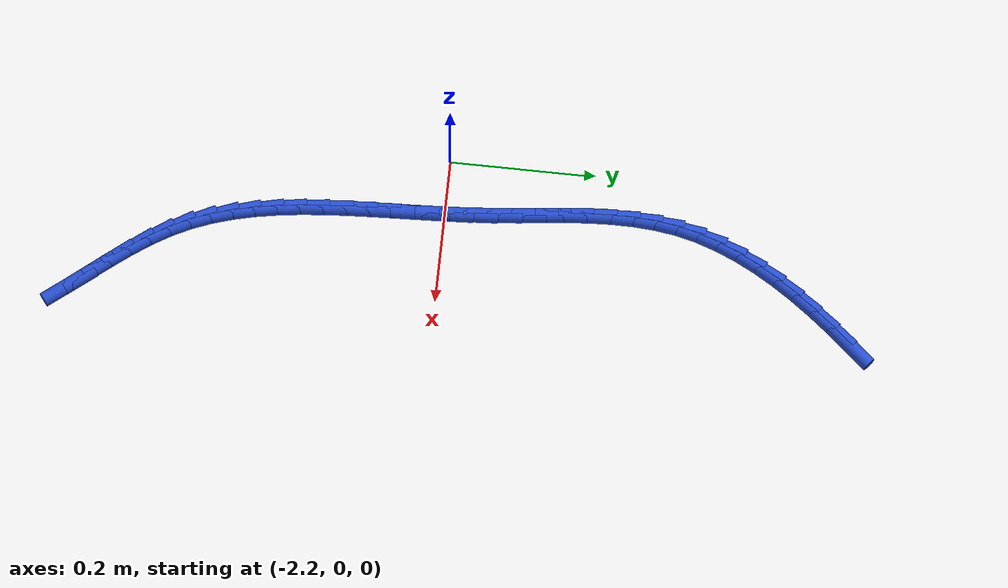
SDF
<sdf version="1.6">
 <world name="default">
  <model name="ground_plane">
   <static>1</static>
   <link name="link">
    <collision name="collision">
     <geometry><plane><normal>0 0 1</normal><size>100 100</size></plane></geometry>
     <surface><friction><ode><mu>100</mu><mu2>50</mu2></ode></friction></surface>
    </collision>
    <visual name="visual">
     <cast_shadows>0</cast_shadows>
     <geometry><plane><normal>0 0 1</normal><size>100 100</size></plane></geometry>
     <material>
      <script><uri>file://media/materials/scripts/gazebo.material</uri><name>Gazebo/WhiteGlow</name></script>
     </material>
    </visual>
   </link>
  </model>
  <model name="line">
   <link name="link_93">
    <pose>-1.9964070038918784 0.558913786594028 0.01 0 1.57 0.860356635139389</pose>
    <collision name="collision">
     <geometry><cylinder><radius>0.01</radius><length>0.08</length></cylinder></geometry>
    </collision>
    <visual name="visual">
     <material>
      <script><name>Gazebo/Blue</name><uri>file://media/materials/scripts/gazebo.material</uri></script>
     </material>
     <geometry><cylinder><radius>0.01</radius><length>0.08</length></cylinder></geometry>
    </visual>
   </link>
   <link name="link_94">
    <pose>-2.0177980073815713 0.5340490121318456 0.01 0 1.57 0.8931050110096916</pose>
    <collision name="collision">
     <geometry><cylinder><radius>0.01</radius><length>0.08</length></cylinder></geometry>
    </collision>
    <visual name="visual">
     <material>
      <script><name>Gazebo/Blue</name><uri>file://media/materials/scripts/gazebo.material</uri></script>
     </material>
     <geometry><cylinder><radius>0.01</radius><length>0.08</length></cylinder></geometry>
    </visual>
   </link>
   <link name="link_95">
    <pose>-2.0382259802814744 0.5086679212290653 0.01 0 1.57 0.9322414474355037</pose>
    <collision name="collision">
     <geometry><cylinder><radius>0.01</radius><length>0.08</length></cylinder></geometry>
    </collision>
    <visual name="visual">
     <material>
      <script><name>Gazebo/Blue</name><uri>file://media/materials/scripts/gazebo.material</uri></script>
     </material>
     <geometry><cylinder><radius>0.01</radius><length>0.08</length></cylinder></geometry>
    </visual>
   </link>
   <link name="link_96">
    <pose>-2.0574549414783836 0.4827633533623924 0.01 0 1.57 0.9783418541674905</pose>
    <collision name="collision">
     <geometry><cylinder><radius>0.01</radius><length>0.08</length></cylinder></geometry>
    </collision>
    <visual name="visual">
     <material>
      <script><name>Gazebo/Blue</name><uri>file://media/materials/scripts/gazebo.material</uri></script>
     </material>
     <geometry><cylinder><radius>0.01</radius><length>0.08</length></cylinder></geometry>
    </visual>
   </link>
   <link name="link_97">
    <pose>-2.0752489098590967 0.4563281480085309 0.01 0 1.57 1.032036112230869</pose>
    <collision name="collision">
     <geometry><cylinder><radius>0.01</radius><length>0.08</length></cylinder></geometry>
    </collision>
    <visual name="visual">
     <material>
      <script><name>Gazebo/Blue</name><uri>file://media/materials/scripts/gazebo.material</uri></script>
     </material>
     <geometry><cylinder><radius>0.01</radius><length>0.08</length></cylinder></geometry>
    </visual>
   </link>
   <link name="link_98">
    <pose>-2.0913719043104093 0.4293551446441848 0.01 0 1.57 1.0939496142355687</pose>
    <collision name="collision">
     <geometry><cylinder><radius>0.01</radius><length>0.08</length></cylinder></geometry>
    </collision>
    <visual name="visual">
     <material>
      <script><name>Gazebo/Blue</name><uri>file://media/materials/scripts/gazebo.material</uri></script>
     </material>
     <geometry><cylinder><radius>0.01</radius><length>0.08</length></cylinder></geometry>
    </visual>
   </link>
   <link name="link_99">
    <pose>-2.105587943719117 0.401837182746059 0.01 0 1.57 1.1646090229295563</pose>
    <collision name="collision">
     <geometry><cylinder><radius>0.01</radius><length>0.08</length></cylinder></geometry>
    </collision>
    <visual name="visual">
     <material>
      <script><name>Gazebo/Blue</name><uri>file://media/materials/scripts/gazebo.material</uri></script>
     </material>
     <geometry><cylinder><radius>0.01</radius><length>0.08</length></cylinder></geometry>
    </visual>
   </link>
   <link name="link_100">
    <pose>-2.1176610469720174 0.3737671017908575 0.01 0 1.57 1.2443043697153169</pose>
    <collision name="collision">
     <geometry><cylinder><radius>0.01</radius><length>0.08</length></cylinder></geometry>
    </collision>
    <visual name="visual">
     <material>
      <script><name>Gazebo/Blue</name><uri>file://media/materials/scripts/gazebo.material</uri></script>
     </material>
     <geometry><cylinder><radius>0.01</radius><length>0.08</length></cylinder></geometry>
    </visual>
   </link>
   <link name="link_101">
    <pose>-2.1273552329559067 0.3451377412552853 0.01 0 1.57 1.3329076451429327</pose>
    <collision name="collision">
     <geometry><cylinder><radius>0.01</radius><length>0.08</length></cylinder></geometry>
    </collision>
    <visual name="visual">
     <material>
      <script><name>Gazebo/Blue</name><uri>file://media/materials/scripts/gazebo.material</uri></script>
     </material>
     <geometry><cylinder><radius>0.01</radius><length>0.08</length></cylinder></geometry>
    </visual>
   </link>
   <link name="link_102">
    <pose>-2.134434631447906 0.3159419492707773 0.01 0 1.57 1.4248492304780023</pose>
    <collision name="collision">
     <geometry><cylinder><radius>0.01</radius><length>0.08</length></cylinder></geometry>
    </collision>
    <visual name="visual">
     <material>
      <script><name>Gazebo/Blue</name><uri>file://media/materials/scripts/gazebo.material</uri></script>
     </material>
     <geometry><cylinder><radius>0.01</radius><length>0.08</length></cylinder></geometry>
    </visual>
   </link>
   <link name="link_103">
    <pose>-2.13880883025791 0.2861839266289423 0.01 0 1.57 1.5045097372652247</pose>
    <collision name="collision">
     <geometry><cylinder><radius>0.01</radius><length>0.08</length></cylinder></geometry>
    </collision>
    <visual name="visual">
     <material>
      <script><name>Gazebo/Blue</name><uri>file://media/materials/scripts/gazebo.material</uri></script>
     </material>
     <geometry><cylinder><radius>0.01</radius><length>0.08</length></cylinder></geometry>
    </visual>
   </link>
   <link name="link_104">
    <pose>-2.1408190898861585 0.2559015651679789 0.01 0 1.57 1.5686090193454159</pose>
    <collision name="collision">
     <geometry><cylinder><radius>0.01</radius><length>0.08</length></cylinder></geometry>
    </collision>
    <visual name="visual">
     <material>
      <script><name>Gazebo/Blue</name><uri>file://media/materials/scripts/gazebo.material</uri></script>
     </material>
     <geometry><cylinder><radius>0.01</radius><length>0.08</length></cylinder></geometry>
    </visual>
   </link>
   <link name="link_105">
    <pose>-2.1408863772303657 0.22513897762449236 0.01 0 1.57 -1.5242025543875692</pose>
    <collision name="collision">
     <geometry><cylinder><radius>0.01</radius><length>0.08</length></cylinder></geometry>
    </collision>
    <visual name="visual">
     <material>
      <script><name>Gazebo/Blue</name><uri>file://media/materials/scripts/gazebo.material</uri></script>
     </material>
     <geometry><cylinder><radius>0.01</radius><length>0.08</length></cylinder></geometry>
    </visual>
   </link>
   <link name="link_106">
    <pose>-2.139431659188249 0.19394027673508668 0.01 0 1.57 -1.4900699656159377</pose>
    <collision name="collision">
     <geometry><cylinder><radius>0.01</radius><length>0.08</length></cylinder></geometry>
    </collision>
    <visual name="visual">
     <material>
      <script><name>Gazebo/Blue</name><uri>file://media/materials/scripts/gazebo.material</uri></script>
     </material>
     <geometry><cylinder><radius>0.01</radius><length>0.08</length></cylinder></geometry>
    </visual>
   </link>
   <link name="link_107">
    <pose>-2.136875902657522 0.16234957523636714 0.01 0 1.57 -1.4698267959696667</pose>
    <collision name="collision">
     <geometry><cylinder><radius>0.01</radius><length>0.08</length></cylinder></geometry>
    </collision>
    <visual name="visual">
     <material>
      <script><name>Gazebo/Blue</name><uri>file://media/materials/scripts/gazebo.material</uri></script>
     </material>
     <geometry><cylinder><radius>0.01</radius><length>0.08</length></cylinder></geometry>
    </visual>
   </link>
   <link name="link_108">
    <pose>-2.1336400745359008 0.13041098586493763 0.01 0 1.57 -1.4628222214047595</pose>
    <collision name="collision">
     <geometry><cylinder><radius>0.01</radius><length>0.08</length></cylinder></geometry>
    </collision>
    <visual name="visual">
     <material>
      <script><name>Gazebo/Blue</name><uri>file://media/materials/scripts/gazebo.material</uri></script>
     </material>
     <geometry><cylinder><radius>0.01</radius><length>0.08</length></cylinder></geometry>
    </visual>
   </link>
   <link name="link_109">
    <pose>-2.130145141721101 0.09816862135740348 0.01 0 1.57 -1.4686039374138973</pose>
    <collision name="collision">
     <geometry><cylinder><radius>0.01</radius><length>0.08</length></cylinder></geometry>
    </collision>
    <visual name="visual">
     <material>
      <script><name>Gazebo/Blue</name><uri>file://media/materials/scripts/gazebo.material</uri></script>
     </material>
     <geometry><cylinder><radius>0.01</radius><length>0.08</length></cylinder></geometry>
    </visual>
   </link>
   <link name="link_110">
    <pose>-2.1268120711108365 0.06566659445036854 0.01 0 1.57 -1.486731116293258</pose>
    <collision name="collision">
     <geometry><cylinder><radius>0.01</radius><length>0.08</length></cylinder></geometry>
    </collision>
    <visual name="visual">
     <material>
      <script><name>Gazebo/Blue</name><uri>file://media/materials/scripts/gazebo.material</uri></script>
     </material>
     <geometry><cylinder><radius>0.01</radius><length>0.08</length></cylinder></geometry>
    </visual>
   </link>
   <link name="link_111">
    <pose>-2.1240552118322564 0.03294958825848879 0.01 0 1.57 -1.508720797402786</pose>
    <collision name="collision">
     <geometry><cylinder><radius>0.01</radius><length>0.08</length></cylinder></geometry>
    </collision>
    <visual name="visual">
     <material>
      <script><name>Gazebo/Blue</name><uri>file://media/materials/scripts/gazebo.material</uri></script>
     </material>
     <geometry><cylinder><radius>0.01</radius><length>0.08</length></cylinder></geometry>
    </visual>
   </link>
   <link name="link_112">
    <pose>-2.122012569266284 8.610364676828696e-05 0.01 0 1.57 -1.5234034923213686</pose>
    <collision name="collision">
     <geometry><cylinder><radius>0.01</radius><length>0.08</length></cylinder></geometry>
    </collision>
    <visual name="visual">
     <material>
      <script><name>Gazebo/Blue</name><uri>file://media/materials/scripts/gazebo.material</uri></script>
     </material>
     <geometry><cylinder><radius>0.01</radius><length>0.08</length></cylinder></geometry>
    </visual>
   </link>
   <link name="link_113">
    <pose>-2.12045172431834 -0.0328234320593507 0.01 0 1.57 -1.530109837356548</pose>
    <collision name="collision">
     <geometry><cylinder><radius>0.01</radius><length>0.08</length></cylinder></geometry>
    </collision>
    <visual name="visual">
     <material>
      <script><name>Gazebo/Blue</name><uri>file://media/materials/scripts/gazebo.material</uri></script>
     </material>
     <geometry><cylinder><radius>0.01</radius><length>0.08</length></cylinder></geometry>
    </visual>
   </link>
   <link name="link_114">
    <pose>-2.1191143161308847 -0.06567635564364914 0.01 0 1.57 -1.5288454519685315</pose>
    <collision name="collision">
     <geometry><cylinder><radius>0.01</radius><length>0.08</length></cylinder></geometry>
    </collision>
    <visual name="visual">
     <material>
      <script><name>Gazebo/Blue</name><uri>file://media/materials/scripts/gazebo.material</uri></script>
     </material>
     <geometry><cylinder><radius>0.01</radius><length>0.08</length></cylinder></geometry>
    </visual>
   </link>
   <link name="link_115">
    <pose>-2.1177419838463836 -0.09837000388990548 0.01 0 1.57 -1.5194837333069715</pose>
    <collision name="collision">
     <geometry><cylinder><radius>0.01</radius><length>0.08</length></cylinder></geometry>
    </collision>
    <visual name="visual">
     <material>
      <script><name>Gazebo/Blue</name><uri>file://media/materials/scripts/gazebo.material</uri></script>
     </material>
     <geometry><cylinder><radius>0.01</radius><length>0.08</length></cylinder></geometry>
    </visual>
   </link>
   <link name="link_116">
    <pose>-2.116076366607299 -0.13080171358190068 0.01 0 1.57 -1.501761738087471</pose>
    <collision name="collision">
     <geometry><cylinder><radius>0.01</radius><length>0.08</length></cylinder></geometry>
    </collision>
    <visual name="visual">
     <material>
      <script><name>Gazebo/Blue</name><uri>file://media/materials/scripts/gazebo.material</uri></script>
     </material>
     <geometry><cylinder><radius>0.01</radius><length>0.08</length></cylinder></geometry>
    </visual>
   </link>
   <link name="link_117">
    <pose>-2.1138591035560945 -0.1628688215034148 0.01 0 1.57 -1.4752876466021567</pose>
    <collision name="collision">
     <geometry><cylinder><radius>0.01</radius><length>0.08</length></cylinder></geometry>
    </collision>
    <visual name="visual">
     <material>
      <script><name>Gazebo/Blue</name><uri>file://media/materials/scripts/gazebo.material</uri></script>
     </material>
     <geometry><cylinder><radius>0.01</radius><length>0.08</length></cylinder></geometry>
    </visual>
   </link>
   <link name="link_118">
    <pose>-2.1108318338352334 -0.19446866443822877 0.01 0 1.57 -1.4395649329699123</pose>
    <collision name="collision">
     <geometry><cylinder><radius>0.01</radius><length>0.08</length></cylinder></geometry>
    </collision>
    <visual name="visual">
     <material>
      <script><name>Gazebo/Blue</name><uri>file://media/materials/scripts/gazebo.material</uri></script>
     </material>
     <geometry><cylinder><radius>0.01</radius><length>0.08</length></cylinder></geometry>
    </visual>
   </link>
   <link name="link_119">
    <pose>-2.1067361965871805 -0.22549857917012106 0.01 0 1.57 -1.3940422986902223</pose>
    <collision name="collision">
     <geometry><cylinder><radius>0.01</radius><length>0.08</length></cylinder></geometry>
    </collision>
    <visual name="visual">
     <material>
      <script><name>Gazebo/Blue</name><uri>file://media/materials/scripts/gazebo.material</uri></script>
     </material>
     <geometry><cylinder><radius>0.01</radius><length>0.08</length></cylinder></geometry>
    </visual>
   </link>
   <link name="link_120">
    <pose>-2.101313830954398 -0.2558559024828726 0.01 0 1.57 -1.338201760585341</pose>
    <collision name="collision">
     <geometry><cylinder><radius>0.01</radius><length>0.08</length></cylinder></geometry>
    </collision>
    <visual name="visual">
     <material>
      <script><name>Gazebo/Blue</name><uri>file://media/materials/scripts/gazebo.material</uri></script>
     </material>
     <geometry><cylinder><radius>0.01</radius><length>0.08</length></cylinder></geometry>
    </visual>
   </link>
   <link name="link_121">
    <pose>-2.0943063760793494 -0.28543797116026354 0.01 0 1.57 -1.2716973296316154</pose>
    <collision name="collision">
     <geometry><cylinder><radius>0.01</radius><length>0.08</length></cylinder></geometry>
    </collision>
    <visual name="visual">
     <material>
      <script><name>Gazebo/Blue</name><uri>file://media/materials/scripts/gazebo.material</uri></script>
     </material>
     <geometry><cylinder><radius>0.01</radius><length>0.08</length></cylinder></geometry>
    </visual>
   </link>
   <link name="link_122">
    <pose>-2.0854554711044977 -0.3141421219860745 0.01 0 1.57 -1.194548246177571</pose>
    <collision name="collision">
     <geometry><cylinder><radius>0.01</radius><length>0.08</length></cylinder></geometry>
    </collision>
    <visual name="visual">
     <material>
      <script><name>Gazebo/Blue</name><uri>file://media/materials/scripts/gazebo.material</uri></script>
     </material>
     <geometry><cylinder><radius>0.01</radius><length>0.08</length></cylinder></geometry>
    </visual>
   </link>
   <link name="link_123">
    <pose>-2.074502755172308 -0.34186569174408443 0.01 0 1.57 -1.107509598121227</pose>
    <collision name="collision">
     <geometry><cylinder><radius>0.01</radius><length>0.08</length></cylinder></geometry>
    </collision>
    <visual name="visual">
     <material>
      <script><name>Gazebo/Blue</name><uri>file://media/materials/scripts/gazebo.material</uri></script>
     </material>
     <geometry><cylinder><radius>0.01</radius><length>0.08</length></cylinder></geometry>
    </visual>
   </link>
   <link name="link_124">
    <pose>-2.0611935668761925 -0.3685081008041798 0.01 0 1.57 -1.0222741898797476</pose>
    <collision name="collision">
     <geometry><cylinder><radius>0.01</radius><length>0.08</length></cylinder></geometry>
    </collision>
    <visual name="visual">
     <material>
      <script><name>Gazebo/Blue</name><uri>file://media/materials/scripts/gazebo.material</uri></script>
     </material>
     <geometry><cylinder><radius>0.01</radius><length>0.08</length></cylinder></geometry>
    </visual>
   </link>
   <link name="link_125">
    <pose>-2.045542540410619 -0.3941204408464564 0.01 0 1.57 -0.9570719790833315</pose>
    <collision name="collision">
     <geometry><cylinder><radius>0.01</radius><length>0.08</length></cylinder></geometry>
    </collision>
    <visual name="visual">
     <material>
      <script><name>Gazebo/Blue</name><uri>file://media/materials/scripts/gazebo.material</uri></script>
     </material>
     <geometry><cylinder><radius>0.01</radius><length>0.08</length></cylinder></geometry>
    </visual>
   </link>
   <link name="link_126">
    <pose>-2.028011478842485 -0.41900565574800813 0.01 0 1.57 -0.9132385582330593</pose>
    <collision name="collision">
     <geometry><cylinder><radius>0.01</radius><length>0.08</length></cylinder></geometry>
    </collision>
    <visual name="visual">
     <material>
      <script><name>Gazebo/Blue</name><uri>file://media/materials/scripts/gazebo.material</uri></script>
     </material>
     <geometry><cylinder><radius>0.01</radius><length>0.08</length></cylinder></geometry>
    </visual>
   </link>
   <link name="link_127">
    <pose>-2.009104353096036 -0.44349043895386375 0.01 0 1.57 -0.8898323595276295</pose>
    <collision name="collision">
     <geometry><cylinder><radius>0.01</radius><length>0.08</length></cylinder></geometry>
    </collision>
    <visual name="visual">
     <material>
      <script><name>Gazebo/Blue</name><uri>file://media/materials/scripts/gazebo.material</uri></script>
     </material>
     <geometry><cylinder><radius>0.01</radius><length>0.08</length></cylinder></geometry>
    </visual>
   </link>
   <link name="link_128">
    <pose>-1.9893251340955138 -0.4679014839090535 0.01 0 1.57 -0.8858516657249176</pose>
    <collision name="collision">
     <geometry><cylinder><radius>0.01</radius><length>0.08</length></cylinder></geometry>
    </collision>
    <visual name="visual">
     <material>
      <script><name>Gazebo/Blue</name><uri>file://media/materials/scripts/gazebo.material</uri></script>
     </material>
     <geometry><cylinder><radius>0.01</radius><length>0.08</length></cylinder></geometry>
    </visual>
   </link>
   <link name="link_129">
    <pose>-1.9691777927651632 -0.4925654840586075 0.01 0 1.57 -0.9005017468870802</pose>
    <collision name="collision">
     <geometry><cylinder><radius>0.01</radius><length>0.08</length></cylinder></geometry>
    </collision>
    <visual name="visual">
     <material>
      <script><name>Gazebo/Blue</name><uri>file://media/materials/scripts/gazebo.material</uri></script>
     </material>
     <geometry><cylinder><radius>0.01</radius><length>0.08</length></cylinder></geometry>
    </visual>
   </link>
  </model>
 </world>
</sdf>
